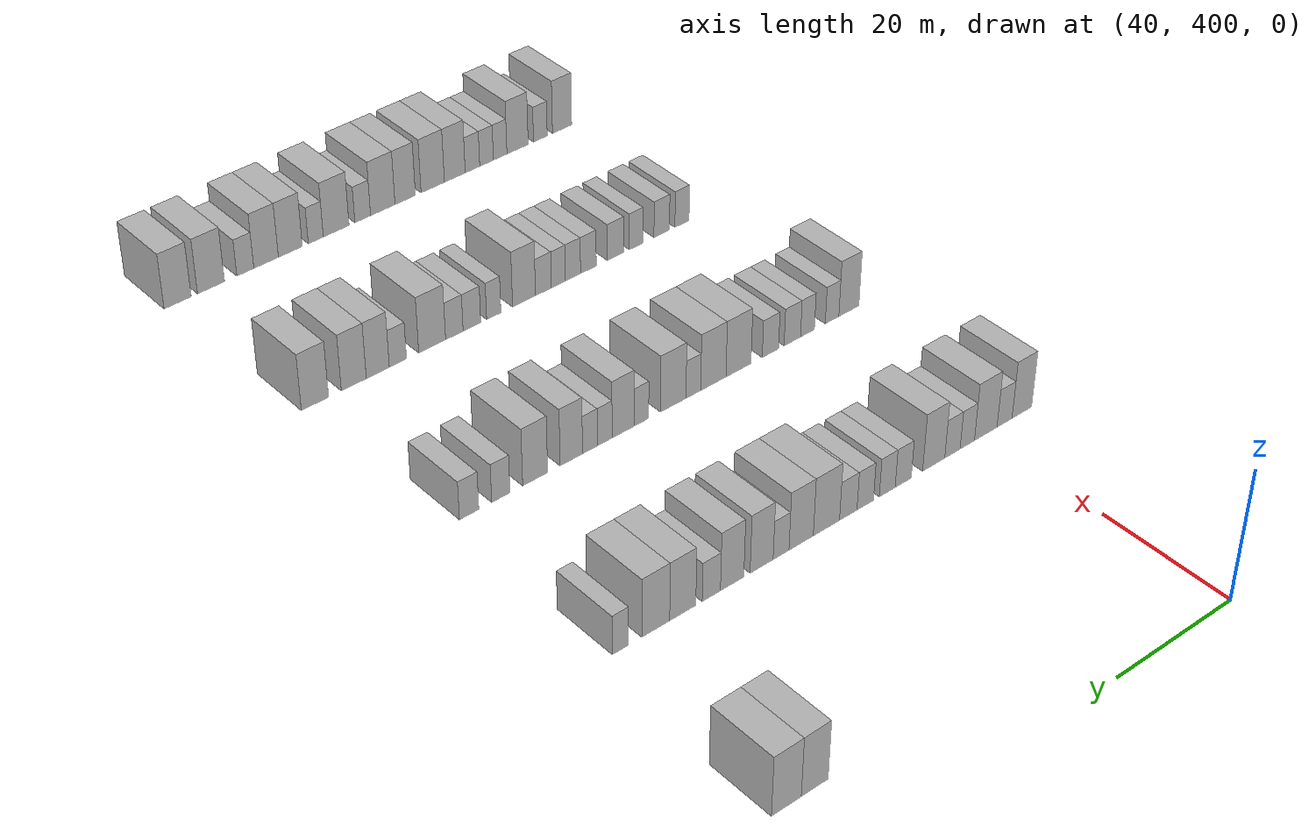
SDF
<sdf version="1.6">
 <world name="default">
  <model name="building_471">
   <static>1</static>
   <pose>55.0000 457.7107 0 0.000000 0.000000 0.000000</pose>
   <link name="link">
    <pose>0 0 4.50 0 0 0</pose>
    <collision name="collision"><geometry><box><size>10.0000 3.9927 9.0000</size></box></geometry></collision>
    <visual name="visual">
     <cast_shadows>0</cast_shadows>
     <geometry><box><size>10.0000 3.9927 9.0000</size></box></geometry>
     <material>
      <script>
       <uri>model://HANNAS_wall/materials/scripts</uri>
       <uri>model://HANNAS_wall/materials/textures</uri>
       <name>vrc/HANNAS_wall</name>
      </script>
     </material>
    </visual>
   </link>
  </model>
  <model name="building_472">
   <static>1</static>
   <pose>55.0000 461.8954 0 0.000000 0.000000 0.000000</pose>
   <link name="link">
    <pose>0 0 4.50 0 0 0</pose>
    <collision name="collision"><geometry><box><size>10.0000 4.3766 9.0000</size></box></geometry></collision>
    <visual name="visual">
     <cast_shadows>0</cast_shadows>
     <geometry><box><size>10.0000 4.3766 9.0000</size></box></geometry>
     <material>
      <script>
       <uri>model://HANNAS_wall/materials/scripts</uri>
       <uri>model://HANNAS_wall/materials/textures</uri>
       <name>vrc/HANNAS_wall</name>
      </script>
     </material>
    </visual>
   </link>
  </model>
  <model name="building_681">
   <static>1</static>
   <pose>85.0000 392.8755 0 0.000000 0.000000 0.000000</pose>
   <link name="link">
    <pose>0 0 4.50 0 0 0</pose>
    <collision name="collision"><geometry><box><size>10.0000 3.6332 9.0000</size></box></geometry></collision>
    <visual name="visual">
     <cast_shadows>0</cast_shadows>
     <geometry><box><size>10.0000 3.6332 9.0000</size></box></geometry>
     <material>
      <script>
       <uri>model://HANNAS_wall/materials/scripts</uri>
       <uri>model://HANNAS_wall/materials/textures</uri>
       <name>vrc/HANNAS_wall</name>
      </script>
     </material>
    </visual>
   </link>
  </model>
  <model name="building_682">
   <static>1</static>
   <pose>85.0000 396.0728 0 0.000000 0.000000 0.000000</pose>
   <link name="link">
    <pose>0 0 3.00 0 0 0</pose>
    <collision name="collision"><geometry><box><size>10.0000 2.7614 6.0000</size></box></geometry></collision>
    <visual name="visual">
     <cast_shadows>0</cast_shadows>
     <geometry><box><size>10.0000 2.7614 6.0000</size></box></geometry>
     <material>
      <script>
       <uri>model://HANNAS_wall/materials/scripts</uri>
       <uri>model://HANNAS_wall/materials/textures</uri>
       <name>vrc/HANNAS_wall</name>
      </script>
     </material>
    </visual>
   </link>
  </model>
  <model name="building_683">
   <static>1</static>
   <pose>85.0000 399.5117 0 0.000000 0.000000 0.000000</pose>
   <link name="link">
    <pose>0 0 4.50 0 0 0</pose>
    <collision name="collision"><geometry><box><size>10.0000 4.1166 9.0000</size></box></geometry></collision>
    <visual name="visual">
     <cast_shadows>0</cast_shadows>
     <geometry><box><size>10.0000 4.1166 9.0000</size></box></geometry>
     <material>
      <script>
       <uri>model://HANNAS_wall/materials/scripts</uri>
       <uri>model://HANNAS_wall/materials/textures</uri>
       <name>vrc/HANNAS_wall</name>
      </script>
     </material>
    </visual>
   </link>
  </model>
  <model name="building_684">
   <static>1</static>
   <pose>85.0000 402.8672 0 0.000000 0.000000 0.000000</pose>
   <link name="link">
    <pose>0 0 3.00 0 0 0</pose>
    <collision name="collision"><geometry><box><size>10.0000 2.5944 6.0000</size></box></geometry></collision>
    <visual name="visual">
     <cast_shadows>0</cast_shadows>
     <geometry><box><size>10.0000 2.5944 6.0000</size></box></geometry>
     <material>
      <script>
       <uri>model://HANNAS_wall/materials/scripts</uri>
       <uri>model://HANNAS_wall/materials/textures</uri>
       <name>vrc/HANNAS_wall</name>
      </script>
     </material>
    </visual>
   </link>
  </model>
  <model name="building_685">
   <static>1</static>
   <pose>85.0000 405.5338 0 0.000000 0.000000 0.000000</pose>
   <link name="link">
    <pose>0 0 3.00 0 0 0</pose>
    <collision name="collision"><geometry><box><size>10.0000 2.7387 6.0000</size></box></geometry></collision>
    <visual name="visual">
     <cast_shadows>0</cast_shadows>
     <geometry><box><size>10.0000 2.7387 6.0000</size></box></geometry>
     <material>
      <script>
       <uri>model://HANNAS_wall/materials/scripts</uri>
       <uri>model://HANNAS_wall/materials/textures</uri>
       <name>vrc/HANNAS_wall</name>
      </script>
     </material>
    </visual>
   </link>
  </model>
  <model name="building_686">
   <static>1</static>
   <pose>85.0000 408.8650 0 0.000000 0.000000 0.000000</pose>
   <link name="link">
    <pose>0 0 4.50 0 0 0</pose>
    <collision name="collision"><geometry><box><size>10.0000 3.9237 9.0000</size></box></geometry></collision>
    <visual name="visual">
     <cast_shadows>0</cast_shadows>
     <geometry><box><size>10.0000 3.9237 9.0000</size></box></geometry>
     <material>
      <script>
       <uri>model://HANNAS_wall/materials/scripts</uri>
       <uri>model://HANNAS_wall/materials/textures</uri>
       <name>vrc/HANNAS_wall</name>
      </script>
     </material>
    </visual>
   </link>
  </model>
  <model name="building_687">
   <static>1</static>
   <pose>85.0000 414.2252 0 0.000000 0.000000 0.000000</pose>
   <link name="link">
    <pose>0 0 3.00 0 0 0</pose>
    <collision name="collision"><geometry><box><size>10.0000 2.7968 6.0000</size></box></geometry></collision>
    <visual name="visual">
     <cast_shadows>0</cast_shadows>
     <geometry><box><size>10.0000 2.7968 6.0000</size></box></geometry>
     <material>
      <script>
       <uri>model://HANNAS_wall/materials/scripts</uri>
       <uri>model://HANNAS_wall/materials/textures</uri>
       <name>vrc/HANNAS_wall</name>
      </script>
     </material>
    </visual>
   </link>
  </model>
  <model name="building_688">
   <static>1</static>
   <pose>85.0000 416.9975 0 0.000000 0.000000 0.000000</pose>
   <link name="link">
    <pose>0 0 3.00 0 0 0</pose>
    <collision name="collision"><geometry><box><size>10.0000 2.7479 6.0000</size></box></geometry></collision>
    <visual name="visual">
     <cast_shadows>0</cast_shadows>
     <geometry><box><size>10.0000 2.7479 6.0000</size></box></geometry>
     <material>
      <script>
       <uri>model://HANNAS_wall/materials/scripts</uri>
       <uri>model://HANNAS_wall/materials/textures</uri>
       <name>vrc/HANNAS_wall</name>
      </script>
     </material>
    </visual>
   </link>
  </model>
  <model name="building_689">
   <static>1</static>
   <pose>85.0000 420.7745 0 0.000000 0.000000 0.000000</pose>
   <link name="link">
    <pose>0 0 3.00 0 0 0</pose>
    <collision name="collision"><geometry><box><size>10.0000 2.8060 6.0000</size></box></geometry></collision>
    <visual name="visual">
     <cast_shadows>0</cast_shadows>
     <geometry><box><size>10.0000 2.8060 6.0000</size></box></geometry>
     <material>
      <script>
       <uri>model://HANNAS_wall/materials/scripts</uri>
       <uri>model://HANNAS_wall/materials/textures</uri>
       <name>vrc/HANNAS_wall</name>
      </script>
     </material>
    </visual>
   </link>
  </model>
  <model name="building_690">
   <static>1</static>
   <pose>85.0000 423.6525 0 0.000000 0.000000 0.000000</pose>
   <link name="link">
    <pose>0 0 3.00 0 0 0</pose>
    <collision name="collision"><geometry><box><size>10.0000 2.9501 6.0000</size></box></geometry></collision>
    <visual name="visual">
     <cast_shadows>0</cast_shadows>
     <geometry><box><size>10.0000 2.9501 6.0000</size></box></geometry>
     <material>
      <script>
       <uri>model://HANNAS_wall/materials/scripts</uri>
       <uri>model://HANNAS_wall/materials/textures</uri>
       <name>vrc/HANNAS_wall</name>
      </script>
     </material>
    </visual>
   </link>
  </model>
  <model name="building_691">
   <static>1</static>
   <pose>85.0000 427.3217 0 0.000000 0.000000 0.000000</pose>
   <link name="link">
    <pose>0 0 4.50 0 0 0</pose>
    <collision name="collision"><geometry><box><size>10.0000 4.3881 9.0000</size></box></geometry></collision>
    <visual name="visual">
     <cast_shadows>0</cast_shadows>
     <geometry><box><size>10.0000 4.3881 9.0000</size></box></geometry>
     <material>
      <script>
       <uri>model://HANNAS_wall/materials/scripts</uri>
       <uri>model://HANNAS_wall/materials/textures</uri>
       <name>vrc/HANNAS_wall</name>
      </script>
     </material>
    </visual>
   </link>
  </model>
  <model name="building_692">
   <static>1</static>
   <pose>85.0000 431.5186 0 0.000000 0.000000 0.000000</pose>
   <link name="link">
    <pose>0 0 4.50 0 0 0</pose>
    <collision name="collision"><geometry><box><size>10.0000 4.0057 9.0000</size></box></geometry></collision>
    <visual name="visual">
     <cast_shadows>0</cast_shadows>
     <geometry><box><size>10.0000 4.0057 9.0000</size></box></geometry>
     <material>
      <script>
       <uri>model://HANNAS_wall/materials/scripts</uri>
       <uri>model://HANNAS_wall/materials/textures</uri>
       <name>vrc/HANNAS_wall</name>
      </script>
     </material>
    </visual>
   </link>
  </model>
  <model name="building_693">
   <static>1</static>
   <pose>85.0000 434.8150 0 0.000000 0.000000 0.000000</pose>
   <link name="link">
    <pose>0 0 3.00 0 0 0</pose>
    <collision name="collision"><geometry><box><size>10.0000 2.5872 6.0000</size></box></geometry></collision>
    <visual name="visual">
     <cast_shadows>0</cast_shadows>
     <geometry><box><size>10.0000 2.5872 6.0000</size></box></geometry>
     <material>
      <script>
       <uri>model://HANNAS_wall/materials/scripts</uri>
       <uri>model://HANNAS_wall/materials/textures</uri>
       <name>vrc/HANNAS_wall</name>
      </script>
     </material>
    </visual>
   </link>
  </model>
  <model name="building_694">
   <static>1</static>
   <pose>85.0000 437.9677 0 0.000000 0.000000 0.000000</pose>
   <link name="link">
    <pose>0 0 4.50 0 0 0</pose>
    <collision name="collision"><geometry><box><size>10.0000 3.7180 9.0000</size></box></geometry></collision>
    <visual name="visual">
     <cast_shadows>0</cast_shadows>
     <geometry><box><size>10.0000 3.7180 9.0000</size></box></geometry>
     <material>
      <script>
       <uri>model://HANNAS_wall/materials/scripts</uri>
       <uri>model://HANNAS_wall/materials/textures</uri>
       <name>vrc/HANNAS_wall</name>
      </script>
     </material>
    </visual>
   </link>
  </model>
  <model name="building_695">
   <static>1</static>
   <pose>85.0000 442.6851 0 0.000000 0.000000 0.000000</pose>
   <link name="link">
    <pose>0 0 4.50 0 0 0</pose>
    <collision name="collision"><geometry><box><size>10.0000 3.7169 9.0000</size></box></geometry></collision>
    <visual name="visual">
     <cast_shadows>0</cast_shadows>
     <geometry><box><size>10.0000 3.7169 9.0000</size></box></geometry>
     <material>
      <script>
       <uri>model://HANNAS_wall/materials/scripts</uri>
       <uri>model://HANNAS_wall/materials/textures</uri>
       <name>vrc/HANNAS_wall</name>
      </script>
     </material>
    </visual>
   </link>
  </model>
  <model name="building_696">
   <static>1</static>
   <pose>85.0000 445.9765 0 0.000000 0.000000 0.000000</pose>
   <link name="link">
    <pose>0 0 3.00 0 0 0</pose>
    <collision name="collision"><geometry><box><size>10.0000 2.8658 6.0000</size></box></geometry></collision>
    <visual name="visual">
     <cast_shadows>0</cast_shadows>
     <geometry><box><size>10.0000 2.8658 6.0000</size></box></geometry>
     <material>
      <script>
       <uri>model://HANNAS_wall/materials/scripts</uri>
       <uri>model://HANNAS_wall/materials/textures</uri>
       <name>vrc/HANNAS_wall</name>
      </script>
     </material>
    </visual>
   </link>
  </model>
  <model name="building_697">
   <static>1</static>
   <pose>85.0000 450.4299 0 0.000000 0.000000 0.000000</pose>
   <link name="link">
    <pose>0 0 4.50 0 0 0</pose>
    <collision name="collision"><geometry><box><size>10.0000 4.0410 9.0000</size></box></geometry></collision>
    <visual name="visual">
     <cast_shadows>0</cast_shadows>
     <geometry><box><size>10.0000 4.0410 9.0000</size></box></geometry>
     <material>
      <script>
       <uri>model://HANNAS_wall/materials/scripts</uri>
       <uri>model://HANNAS_wall/materials/textures</uri>
       <name>vrc/HANNAS_wall</name>
      </script>
     </material>
    </visual>
   </link>
  </model>
  <model name="building_698">
   <static>1</static>
   <pose>85.0000 454.5798 0 0.000000 0.000000 0.000000</pose>
   <link name="link">
    <pose>0 0 4.50 0 0 0</pose>
    <collision name="collision"><geometry><box><size>10.0000 4.2588 9.0000</size></box></geometry></collision>
    <visual name="visual">
     <cast_shadows>0</cast_shadows>
     <geometry><box><size>10.0000 4.2588 9.0000</size></box></geometry>
     <material>
      <script>
       <uri>model://HANNAS_wall/materials/scripts</uri>
       <uri>model://HANNAS_wall/materials/textures</uri>
       <name>vrc/HANNAS_wall</name>
      </script>
     </material>
    </visual>
   </link>
  </model>
  <model name="building_699">
   <static>1</static>
   <pose>85.0000 459.9304 0 0.000000 0.000000 0.000000</pose>
   <link name="link">
    <pose>0 0 3.00 0 0 0</pose>
    <collision name="collision"><geometry><box><size>10.0000 2.4423 6.0000</size></box></geometry></collision>
    <visual name="visual">
     <cast_shadows>0</cast_shadows>
     <geometry><box><size>10.0000 2.4423 6.0000</size></box></geometry>
     <material>
      <script>
       <uri>model://HANNAS_wall/materials/scripts</uri>
       <uri>model://HANNAS_wall/materials/textures</uri>
       <name>vrc/HANNAS_wall</name>
      </script>
     </material>
    </visual>
   </link>
  </model>
  <model name="building_894">
   <static>1</static>
   <pose>115.0000 394.5313 0 0.000000 0.000000 0.000000</pose>
   <link name="link">
    <pose>0 0 4.50 0 0 0</pose>
    <collision name="collision"><geometry><box><size>10.0000 3.7235 9.0000</size></box></geometry></collision>
    <visual name="visual">
     <cast_shadows>0</cast_shadows>
     <geometry><box><size>10.0000 3.7235 9.0000</size></box></geometry>
     <material>
      <script>
       <uri>model://HANNAS_wall/materials/scripts</uri>
       <uri>model://HANNAS_wall/materials/textures</uri>
       <name>vrc/HANNAS_wall</name>
      </script>
     </material>
    </visual>
   </link>
  </model>
  <model name="building_895">
   <static>1</static>
   <pose>115.0000 397.6484 0 0.000000 0.000000 0.000000</pose>
   <link name="link">
    <pose>0 0 3.00 0 0 0</pose>
    <collision name="collision"><geometry><box><size>10.0000 2.5107 6.0000</size></box></geometry></collision>
    <visual name="visual">
     <cast_shadows>0</cast_shadows>
     <geometry><box><size>10.0000 2.5107 6.0000</size></box></geometry>
     <material>
      <script>
       <uri>model://HANNAS_wall/materials/scripts</uri>
       <uri>model://HANNAS_wall/materials/textures</uri>
       <name>vrc/HANNAS_wall</name>
      </script>
     </material>
    </visual>
   </link>
  </model>
  <model name="building_896">
   <static>1</static>
   <pose>115.0000 402.1711 0 0.000000 0.000000 0.000000</pose>
   <link name="link">
    <pose>0 0 3.00 0 0 0</pose>
    <collision name="collision"><geometry><box><size>10.0000 2.5346 6.0000</size></box></geometry></collision>
    <visual name="visual">
     <cast_shadows>0</cast_shadows>
     <geometry><box><size>10.0000 2.5346 6.0000</size></box></geometry>
     <material>
      <script>
       <uri>model://HANNAS_wall/materials/scripts</uri>
       <uri>model://HANNAS_wall/materials/textures</uri>
       <name>vrc/HANNAS_wall</name>
      </script>
     </material>
    </visual>
   </link>
  </model>
  <model name="building_897">
   <static>1</static>
   <pose>115.0000 404.9210 0 0.000000 0.000000 0.000000</pose>
   <link name="link">
    <pose>0 0 3.00 0 0 0</pose>
    <collision name="collision"><geometry><box><size>10.0000 2.9652 6.0000</size></box></geometry></collision>
    <visual name="visual">
     <cast_shadows>0</cast_shadows>
     <geometry><box><size>10.0000 2.9652 6.0000</size></box></geometry>
     <material>
      <script>
       <uri>model://HANNAS_wall/materials/scripts</uri>
       <uri>model://HANNAS_wall/materials/textures</uri>
       <name>vrc/HANNAS_wall</name>
      </script>
     </material>
    </visual>
   </link>
  </model>
  <model name="building_898">
   <static>1</static>
   <pose>115.0000 408.8579 0 0.000000 0.000000 0.000000</pose>
   <link name="link">
    <pose>0 0 3.00 0 0 0</pose>
    <collision name="collision"><geometry><box><size>10.0000 2.9086 6.0000</size></box></geometry></collision>
    <visual name="visual">
     <cast_shadows>0</cast_shadows>
     <geometry><box><size>10.0000 2.9086 6.0000</size></box></geometry>
     <material>
      <script>
       <uri>model://HANNAS_wall/materials/scripts</uri>
       <uri>model://HANNAS_wall/materials/textures</uri>
       <name>vrc/HANNAS_wall</name>
      </script>
     </material>
    </visual>
   </link>
  </model>
  <model name="building_899">
   <static>1</static>
   <pose>115.0000 414.5144 0 0.000000 0.000000 0.000000</pose>
   <link name="link">
    <pose>0 0 4.50 0 0 0</pose>
    <collision name="collision"><geometry><box><size>10.0000 4.4045 9.0000</size></box></geometry></collision>
    <visual name="visual">
     <cast_shadows>0</cast_shadows>
     <geometry><box><size>10.0000 4.4045 9.0000</size></box></geometry>
     <material>
      <script>
       <uri>model://HANNAS_wall/materials/scripts</uri>
       <uri>model://HANNAS_wall/materials/textures</uri>
       <name>vrc/HANNAS_wall</name>
      </script>
     </material>
    </visual>
   </link>
  </model>
  <model name="building_900">
   <static>1</static>
   <pose>115.0000 418.9099 0 0.000000 0.000000 0.000000</pose>
   <link name="link">
    <pose>0 0 4.50 0 0 0</pose>
    <collision name="collision"><geometry><box><size>10.0000 4.3864 9.0000</size></box></geometry></collision>
    <visual name="visual">
     <cast_shadows>0</cast_shadows>
     <geometry><box><size>10.0000 4.3864 9.0000</size></box></geometry>
     <material>
      <script>
       <uri>model://HANNAS_wall/materials/scripts</uri>
       <uri>model://HANNAS_wall/materials/textures</uri>
       <name>vrc/HANNAS_wall</name>
      </script>
     </material>
    </visual>
   </link>
  </model>
  <model name="building_901">
   <static>1</static>
   <pose>115.0000 422.3637 0 0.000000 0.000000 0.000000</pose>
   <link name="link">
    <pose>0 0 3.00 0 0 0</pose>
    <collision name="collision"><geometry><box><size>10.0000 2.5212 6.0000</size></box></geometry></collision>
    <visual name="visual">
     <cast_shadows>0</cast_shadows>
     <geometry><box><size>10.0000 2.5212 6.0000</size></box></geometry>
     <material>
      <script>
       <uri>model://HANNAS_wall/materials/scripts</uri>
       <uri>model://HANNAS_wall/materials/textures</uri>
       <name>vrc/HANNAS_wall</name>
      </script>
     </material>
    </visual>
   </link>
  </model>
  <model name="building_902">
   <static>1</static>
   <pose>115.0000 425.7836 0 0.000000 0.000000 0.000000</pose>
   <link name="link">
    <pose>0 0 4.50 0 0 0</pose>
    <collision name="collision"><geometry><box><size>10.0000 4.3186 9.0000</size></box></geometry></collision>
    <visual name="visual">
     <cast_shadows>0</cast_shadows>
     <geometry><box><size>10.0000 4.3186 9.0000</size></box></geometry>
     <material>
      <script>
       <uri>model://HANNAS_wall/materials/scripts</uri>
       <uri>model://HANNAS_wall/materials/textures</uri>
       <name>vrc/HANNAS_wall</name>
      </script>
     </material>
    </visual>
   </link>
  </model>
  <model name="building_903">
   <static>1</static>
   <pose>115.0000 431.1488 0 0.000000 0.000000 0.000000</pose>
   <link name="link">
    <pose>0 0 3.00 0 0 0</pose>
    <collision name="collision"><geometry><box><size>10.0000 2.4117 6.0000</size></box></geometry></collision>
    <visual name="visual">
     <cast_shadows>0</cast_shadows>
     <geometry><box><size>10.0000 2.4117 6.0000</size></box></geometry>
     <material>
      <script>
       <uri>model://HANNAS_wall/materials/scripts</uri>
       <uri>model://HANNAS_wall/materials/textures</uri>
       <name>vrc/HANNAS_wall</name>
      </script>
     </material>
    </visual>
   </link>
  </model>
  <model name="building_904">
   <static>1</static>
   <pose>115.0000 434.1847 0 0.000000 0.000000 0.000000</pose>
   <link name="link">
    <pose>0 0 4.50 0 0 0</pose>
    <collision name="collision"><geometry><box><size>10.0000 3.6602 9.0000</size></box></geometry></collision>
    <visual name="visual">
     <cast_shadows>0</cast_shadows>
     <geometry><box><size>10.0000 3.6602 9.0000</size></box></geometry>
     <material>
      <script>
       <uri>model://HANNAS_wall/materials/scripts</uri>
       <uri>model://HANNAS_wall/materials/textures</uri>
       <name>vrc/HANNAS_wall</name>
      </script>
     </material>
    </visual>
   </link>
  </model>
  <model name="building_905">
   <static>1</static>
   <pose>115.0000 437.2220 0 0.000000 0.000000 0.000000</pose>
   <link name="link">
    <pose>0 0 3.00 0 0 0</pose>
    <collision name="collision"><geometry><box><size>10.0000 2.4143 6.0000</size></box></geometry></collision>
    <visual name="visual">
     <cast_shadows>0</cast_shadows>
     <geometry><box><size>10.0000 2.4143 6.0000</size></box></geometry>
     <material>
      <script>
       <uri>model://HANNAS_wall/materials/scripts</uri>
       <uri>model://HANNAS_wall/materials/textures</uri>
       <name>vrc/HANNAS_wall</name>
      </script>
     </material>
    </visual>
   </link>
  </model>
  <model name="building_906">
   <static>1</static>
   <pose>115.0000 439.6427 0 0.000000 0.000000 0.000000</pose>
   <link name="link">
    <pose>0 0 3.00 0 0 0</pose>
    <collision name="collision"><geometry><box><size>10.0000 2.4271 6.0000</size></box></geometry></collision>
    <visual name="visual">
     <cast_shadows>0</cast_shadows>
     <geometry><box><size>10.0000 2.4271 6.0000</size></box></geometry>
     <material>
      <script>
       <uri>model://HANNAS_wall/materials/scripts</uri>
       <uri>model://HANNAS_wall/materials/textures</uri>
       <name>vrc/HANNAS_wall</name>
      </script>
     </material>
    </visual>
   </link>
  </model>
  <model name="building_907">
   <static>1</static>
   <pose>115.0000 442.6619 0 0.000000 0.000000 0.000000</pose>
   <link name="link">
    <pose>0 0 4.50 0 0 0</pose>
    <collision name="collision"><geometry><box><size>10.0000 3.6113 9.0000</size></box></geometry></collision>
    <visual name="visual">
     <cast_shadows>0</cast_shadows>
     <geometry><box><size>10.0000 3.6113 9.0000</size></box></geometry>
     <material>
      <script>
       <uri>model://HANNAS_wall/materials/scripts</uri>
       <uri>model://HANNAS_wall/materials/textures</uri>
       <name>vrc/HANNAS_wall</name>
      </script>
     </material>
    </visual>
   </link>
  </model>
  <model name="building_908">
   <static>1</static>
   <pose>115.0000 448.4432 0 0.000000 0.000000 0.000000</pose>
   <link name="link">
    <pose>0 0 4.50 0 0 0</pose>
    <collision name="collision"><geometry><box><size>10.0000 3.9513 9.0000</size></box></geometry></collision>
    <visual name="visual">
     <cast_shadows>0</cast_shadows>
     <geometry><box><size>10.0000 3.9513 9.0000</size></box></geometry>
     <material>
      <script>
       <uri>model://HANNAS_wall/materials/scripts</uri>
       <uri>model://HANNAS_wall/materials/textures</uri>
       <name>vrc/HANNAS_wall</name>
      </script>
     </material>
    </visual>
   </link>
  </model>
  <model name="building_909">
   <static>1</static>
   <pose>115.0000 453.8413 0 0.000000 0.000000 0.000000</pose>
   <link name="link">
    <pose>0 0 3.00 0 0 0</pose>
    <collision name="collision"><geometry><box><size>10.0000 2.8448 6.0000</size></box></geometry></collision>
    <visual name="visual">
     <cast_shadows>0</cast_shadows>
     <geometry><box><size>10.0000 2.8448 6.0000</size></box></geometry>
     <material>
      <script>
       <uri>model://HANNAS_wall/materials/scripts</uri>
       <uri>model://HANNAS_wall/materials/textures</uri>
       <name>vrc/HANNAS_wall</name>
      </script>
     </material>
    </visual>
   </link>
  </model>
  <model name="building_910">
   <static>1</static>
   <pose>115.0000 458.7483 0 0.000000 0.000000 0.000000</pose>
   <link name="link">
    <pose>0 0 3.00 0 0 0</pose>
    <collision name="collision"><geometry><box><size>10.0000 2.9692 6.0000</size></box></geometry></collision>
    <visual name="visual">
     <cast_shadows>0</cast_shadows>
     <geometry><box><size>10.0000 2.9692 6.0000</size></box></geometry>
     <material>
      <script>
       <uri>model://HANNAS_wall/materials/scripts</uri>
       <uri>model://HANNAS_wall/materials/textures</uri>
       <name>vrc/HANNAS_wall</name>
      </script>
     </material>
    </visual>
   </link>
  </model>
  <model name="building_1128">
   <static>1</static>
   <pose>145.0000 398.0613 0 0.000000 0.000000 0.000000</pose>
   <link name="link">
    <pose>0 0 3.00 0 0 0</pose>
    <collision name="collision"><geometry><box><size>10.0000 2.6232 6.0000</size></box></geometry></collision>
    <visual name="visual">
     <cast_shadows>0</cast_shadows>
     <geometry><box><size>10.0000 2.6232 6.0000</size></box></geometry>
     <material>
      <script>
       <uri>model://HANNAS_wall/materials/scripts</uri>
       <uri>model://HANNAS_wall/materials/textures</uri>
       <name>vrc/HANNAS_wall</name>
      </script>
     </material>
    </visual>
   </link>
  </model>
  <model name="building_1129">
   <static>1</static>
   <pose>145.0000 401.8117 0 0.000000 0.000000 0.000000</pose>
   <link name="link">
    <pose>0 0 3.00 0 0 0</pose>
    <collision name="collision"><geometry><box><size>10.0000 2.8776 6.0000</size></box></geometry></collision>
    <visual name="visual">
     <cast_shadows>0</cast_shadows>
     <geometry><box><size>10.0000 2.8776 6.0000</size></box></geometry>
     <material>
      <script>
       <uri>model://HANNAS_wall/materials/scripts</uri>
       <uri>model://HANNAS_wall/materials/textures</uri>
       <name>vrc/HANNAS_wall</name>
      </script>
     </material>
    </visual>
   </link>
  </model>
  <model name="building_1130">
   <static>1</static>
   <pose>145.0000 406.4985 0 0.000000 0.000000 0.000000</pose>
   <link name="link">
    <pose>0 0 3.00 0 0 0</pose>
    <collision name="collision"><geometry><box><size>10.0000 2.4959 6.0000</size></box></geometry></collision>
    <visual name="visual">
     <cast_shadows>0</cast_shadows>
     <geometry><box><size>10.0000 2.4959 6.0000</size></box></geometry>
     <material>
      <script>
       <uri>model://HANNAS_wall/materials/scripts</uri>
       <uri>model://HANNAS_wall/materials/textures</uri>
       <name>vrc/HANNAS_wall</name>
      </script>
     </material>
    </visual>
   </link>
  </model>
  <model name="building_1131">
   <static>1</static>
   <pose>145.0000 410.2291 0 0.000000 0.000000 0.000000</pose>
   <link name="link">
    <pose>0 0 3.00 0 0 0</pose>
    <collision name="collision"><geometry><box><size>10.0000 2.9652 6.0000</size></box></geometry></collision>
    <visual name="visual">
     <cast_shadows>0</cast_shadows>
     <geometry><box><size>10.0000 2.9652 6.0000</size></box></geometry>
     <material>
      <script>
       <uri>model://HANNAS_wall/materials/scripts</uri>
       <uri>model://HANNAS_wall/materials/textures</uri>
       <name>vrc/HANNAS_wall</name>
      </script>
     </material>
    </visual>
   </link>
  </model>
  <model name="building_1132">
   <static>1</static>
   <pose>145.0000 415.1075 0 0.000000 0.000000 0.000000</pose>
   <link name="link">
    <pose>0 0 3.00 0 0 0</pose>
    <collision name="collision"><geometry><box><size>10.0000 2.7917 6.0000</size></box></geometry></collision>
    <visual name="visual">
     <cast_shadows>0</cast_shadows>
     <geometry><box><size>10.0000 2.7917 6.0000</size></box></geometry>
     <material>
      <script>
       <uri>model://HANNAS_wall/materials/scripts</uri>
       <uri>model://HANNAS_wall/materials/textures</uri>
       <name>vrc/HANNAS_wall</name>
      </script>
     </material>
    </visual>
   </link>
  </model>
  <model name="building_1133">
   <static>1</static>
   <pose>145.0000 417.8361 0 0.000000 0.000000 0.000000</pose>
   <link name="link">
    <pose>0 0 3.00 0 0 0</pose>
    <collision name="collision"><geometry><box><size>10.0000 2.6656 6.0000</size></box></geometry></collision>
    <visual name="visual">
     <cast_shadows>0</cast_shadows>
     <geometry><box><size>10.0000 2.6656 6.0000</size></box></geometry>
     <material>
      <script>
       <uri>model://HANNAS_wall/materials/scripts</uri>
       <uri>model://HANNAS_wall/materials/textures</uri>
       <name>vrc/HANNAS_wall</name>
      </script>
     </material>
    </visual>
   </link>
  </model>
  <model name="building_1134">
   <static>1</static>
   <pose>145.0000 420.3986 0 0.000000 0.000000 0.000000</pose>
   <link name="link">
    <pose>0 0 3.00 0 0 0</pose>
    <collision name="collision"><geometry><box><size>10.0000 2.4594 6.0000</size></box></geometry></collision>
    <visual name="visual">
     <cast_shadows>0</cast_shadows>
     <geometry><box><size>10.0000 2.4594 6.0000</size></box></geometry>
     <material>
      <script>
       <uri>model://HANNAS_wall/materials/scripts</uri>
       <uri>model://HANNAS_wall/materials/textures</uri>
       <name>vrc/HANNAS_wall</name>
      </script>
     </material>
    </visual>
   </link>
  </model>
  <model name="building_1135">
   <static>1</static>
   <pose>145.0000 423.0126 0 0.000000 0.000000 0.000000</pose>
   <link name="link">
    <pose>0 0 3.00 0 0 0</pose>
    <collision name="collision"><geometry><box><size>10.0000 2.7687 6.0000</size></box></geometry></collision>
    <visual name="visual">
     <cast_shadows>0</cast_shadows>
     <geometry><box><size>10.0000 2.7687 6.0000</size></box></geometry>
     <material>
      <script>
       <uri>model://HANNAS_wall/materials/scripts</uri>
       <uri>model://HANNAS_wall/materials/textures</uri>
       <name>vrc/HANNAS_wall</name>
      </script>
     </material>
    </visual>
   </link>
  </model>
  <model name="building_1136">
   <static>1</static>
   <pose>145.0000 426.3698 0 0.000000 0.000000 0.000000</pose>
   <link name="link">
    <pose>0 0 4.50 0 0 0</pose>
    <collision name="collision"><geometry><box><size>10.0000 3.9457 9.0000</size></box></geometry></collision>
    <visual name="visual">
     <cast_shadows>0</cast_shadows>
     <geometry><box><size>10.0000 3.9457 9.0000</size></box></geometry>
     <material>
      <script>
       <uri>model://HANNAS_wall/materials/scripts</uri>
       <uri>model://HANNAS_wall/materials/textures</uri>
       <name>vrc/HANNAS_wall</name>
      </script>
     </material>
    </visual>
   </link>
  </model>
  <model name="building_1137">
   <static>1</static>
   <pose>145.0000 431.5495 0 0.000000 0.000000 0.000000</pose>
   <link name="link">
    <pose>0 0 3.00 0 0 0</pose>
    <collision name="collision"><geometry><box><size>10.0000 2.4138 6.0000</size></box></geometry></collision>
    <visual name="visual">
     <cast_shadows>0</cast_shadows>
     <geometry><box><size>10.0000 2.4138 6.0000</size></box></geometry>
     <material>
      <script>
       <uri>model://HANNAS_wall/materials/scripts</uri>
       <uri>model://HANNAS_wall/materials/textures</uri>
       <name>vrc/HANNAS_wall</name>
      </script>
     </material>
    </visual>
   </link>
  </model>
  <model name="building_1138">
   <static>1</static>
   <pose>145.0000 435.2357 0 0.000000 0.000000 0.000000</pose>
   <link name="link">
    <pose>0 0 3.00 0 0 0</pose>
    <collision name="collision"><geometry><box><size>10.0000 2.9584 6.0000</size></box></geometry></collision>
    <visual name="visual">
     <cast_shadows>0</cast_shadows>
     <geometry><box><size>10.0000 2.9584 6.0000</size></box></geometry>
     <material>
      <script>
       <uri>model://HANNAS_wall/materials/scripts</uri>
       <uri>model://HANNAS_wall/materials/textures</uri>
       <name>vrc/HANNAS_wall</name>
      </script>
     </material>
    </visual>
   </link>
  </model>
  <model name="building_1139">
   <static>1</static>
   <pose>145.0000 438.1715 0 0.000000 0.000000 0.000000</pose>
   <link name="link">
    <pose>0 0 3.00 0 0 0</pose>
    <collision name="collision"><geometry><box><size>10.0000 2.9132 6.0000</size></box></geometry></collision>
    <visual name="visual">
     <cast_shadows>0</cast_shadows>
     <geometry><box><size>10.0000 2.9132 6.0000</size></box></geometry>
     <material>
      <script>
       <uri>model://HANNAS_wall/materials/scripts</uri>
       <uri>model://HANNAS_wall/materials/textures</uri>
       <name>vrc/HANNAS_wall</name>
      </script>
     </material>
    </visual>
   </link>
  </model>
  <model name="building_1140">
   <static>1</static>
   <pose>145.0000 441.8434 0 0.000000 0.000000 0.000000</pose>
   <link name="link">
    <pose>0 0 4.50 0 0 0</pose>
    <collision name="collision"><geometry><box><size>10.0000 4.4306 9.0000</size></box></geometry></collision>
    <visual name="visual">
     <cast_shadows>0</cast_shadows>
     <geometry><box><size>10.0000 4.4306 9.0000</size></box></geometry>
     <material>
      <script>
       <uri>model://HANNAS_wall/materials/scripts</uri>
       <uri>model://HANNAS_wall/materials/textures</uri>
       <name>vrc/HANNAS_wall</name>
      </script>
     </material>
    </visual>
   </link>
  </model>
  <model name="building_1141">
   <static>1</static>
   <pose>145.0000 447.4468 0 0.000000 0.000000 0.000000</pose>
   <link name="link">
    <pose>0 0 3.00 0 0 0</pose>
    <collision name="collision"><geometry><box><size>10.0000 2.7763 6.0000</size></box></geometry></collision>
    <visual name="visual">
     <cast_shadows>0</cast_shadows>
     <geometry><box><size>10.0000 2.7763 6.0000</size></box></geometry>
     <material>
      <script>
       <uri>model://HANNAS_wall/materials/scripts</uri>
       <uri>model://HANNAS_wall/materials/textures</uri>
       <name>vrc/HANNAS_wall</name>
      </script>
     </material>
    </visual>
   </link>
  </model>
  <model name="building_1142">
   <static>1</static>
   <pose>145.0000 450.6814 0 0.000000 0.000000 0.000000</pose>
   <link name="link">
    <pose>0 0 4.50 0 0 0</pose>
    <collision name="collision"><geometry><box><size>10.0000 3.6928 9.0000</size></box></geometry></collision>
    <visual name="visual">
     <cast_shadows>0</cast_shadows>
     <geometry><box><size>10.0000 3.6928 9.0000</size></box></geometry>
     <material>
      <script>
       <uri>model://HANNAS_wall/materials/scripts</uri>
       <uri>model://HANNAS_wall/materials/textures</uri>
       <name>vrc/HANNAS_wall</name>
      </script>
     </material>
    </visual>
   </link>
  </model>
  <model name="building_1143">
   <static>1</static>
   <pose>145.0000 454.5085 0 0.000000 0.000000 0.000000</pose>
   <link name="link">
    <pose>0 0 4.50 0 0 0</pose>
    <collision name="collision"><geometry><box><size>10.0000 3.9614 9.0000</size></box></geometry></collision>
    <visual name="visual">
     <cast_shadows>0</cast_shadows>
     <geometry><box><size>10.0000 3.9614 9.0000</size></box></geometry>
     <material>
      <script>
       <uri>model://HANNAS_wall/materials/scripts</uri>
       <uri>model://HANNAS_wall/materials/textures</uri>
       <name>vrc/HANNAS_wall</name>
      </script>
     </material>
    </visual>
   </link>
  </model>
  <model name="building_1144">
   <static>1</static>
   <pose>145.0000 460.6148 0 0.000000 0.000000 0.000000</pose>
   <link name="link">
    <pose>0 0 4.50 0 0 0</pose>
    <collision name="collision"><geometry><box><size>10.0000 4.2513 9.0000</size></box></geometry></collision>
    <visual name="visual">
     <cast_shadows>0</cast_shadows>
     <geometry><box><size>10.0000 4.2513 9.0000</size></box></geometry>
     <material>
      <script>
       <uri>model://HANNAS_wall/materials/scripts</uri>
       <uri>model://HANNAS_wall/materials/textures</uri>
       <name>vrc/HANNAS_wall</name>
      </script>
     </material>
    </visual>
   </link>
  </model>
  <model name="building_1353">
   <static>1</static>
   <pose>175.0000 395.3615 0 0.000000 0.000000 0.000000</pose>
   <link name="link">
    <pose>0 0 4.50 0 0 0</pose>
    <collision name="collision"><geometry><box><size>10.0000 3.6451 9.0000</size></box></geometry></collision>
    <visual name="visual">
     <cast_shadows>0</cast_shadows>
     <geometry><box><size>10.0000 3.6451 9.0000</size></box></geometry>
     <material>
      <script>
       <uri>model://HANNAS_wall/materials/scripts</uri>
       <uri>model://HANNAS_wall/materials/textures</uri>
       <name>vrc/HANNAS_wall</name>
      </script>
     </material>
    </visual>
   </link>
  </model>
  <model name="building_1354">
   <static>1</static>
   <pose>175.0000 399.4761 0 0.000000 0.000000 0.000000</pose>
   <link name="link">
    <pose>0 0 3.00 0 0 0</pose>
    <collision name="collision"><geometry><box><size>10.0000 2.5841 6.0000</size></box></geometry></collision>
    <visual name="visual">
     <cast_shadows>0</cast_shadows>
     <geometry><box><size>10.0000 2.5841 6.0000</size></box></geometry>
     <material>
      <script>
       <uri>model://HANNAS_wall/materials/scripts</uri>
       <uri>model://HANNAS_wall/materials/textures</uri>
       <name>vrc/HANNAS_wall</name>
      </script>
     </material>
    </visual>
   </link>
  </model>
  <model name="building_1355">
   <static>1</static>
   <pose>175.0000 403.7473 0 0.000000 0.000000 0.000000</pose>
   <link name="link">
    <pose>0 0 4.50 0 0 0</pose>
    <collision name="collision"><geometry><box><size>10.0000 3.9585 9.0000</size></box></geometry></collision>
    <visual name="visual">
     <cast_shadows>0</cast_shadows>
     <geometry><box><size>10.0000 3.9585 9.0000</size></box></geometry>
     <material>
      <script>
       <uri>model://HANNAS_wall/materials/scripts</uri>
       <uri>model://HANNAS_wall/materials/textures</uri>
       <name>vrc/HANNAS_wall</name>
      </script>
     </material>
    </visual>
   </link>
  </model>
  <model name="building_1356">
   <static>1</static>
   <pose>175.0000 406.9758 0 0.000000 0.000000 0.000000</pose>
   <link name="link">
    <pose>0 0 3.00 0 0 0</pose>
    <collision name="collision"><geometry><box><size>10.0000 2.4984 6.0000</size></box></geometry></collision>
    <visual name="visual">
     <cast_shadows>0</cast_shadows>
     <geometry><box><size>10.0000 2.4984 6.0000</size></box></geometry>
     <material>
      <script>
       <uri>model://HANNAS_wall/materials/scripts</uri>
       <uri>model://HANNAS_wall/materials/textures</uri>
       <name>vrc/HANNAS_wall</name>
      </script>
     </material>
    </visual>
   </link>
  </model>
  <model name="building_1357">
   <static>1</static>
   <pose>175.0000 409.4815 0 0.000000 0.000000 0.000000</pose>
   <link name="link">
    <pose>0 0 3.00 0 0 0</pose>
    <collision name="collision"><geometry><box><size>10.0000 2.5130 6.0000</size></box></geometry></collision>
    <visual name="visual">
     <cast_shadows>0</cast_shadows>
     <geometry><box><size>10.0000 2.5130 6.0000</size></box></geometry>
     <material>
      <script>
       <uri>model://HANNAS_wall/materials/scripts</uri>
       <uri>model://HANNAS_wall/materials/textures</uri>
       <name>vrc/HANNAS_wall</name>
      </script>
     </material>
    </visual>
   </link>
  </model>
  <model name="building_1358">
   <static>1</static>
   <pose>175.0000 412.0574 0 0.000000 0.000000 0.000000</pose>
   <link name="link">
    <pose>0 0 3.00 0 0 0</pose>
    <collision name="collision"><geometry><box><size>10.0000 2.6388 6.0000</size></box></geometry></collision>
    <visual name="visual">
     <cast_shadows>0</cast_shadows>
     <geometry><box><size>10.0000 2.6388 6.0000</size></box></geometry>
     <material>
      <script>
       <uri>model://HANNAS_wall/materials/scripts</uri>
       <uri>model://HANNAS_wall/materials/textures</uri>
       <name>vrc/HANNAS_wall</name>
      </script>
     </material>
    </visual>
   </link>
  </model>
  <model name="building_1359">
   <static>1</static>
   <pose>175.0000 415.2617 0 0.000000 0.000000 0.000000</pose>
   <link name="link">
    <pose>0 0 4.50 0 0 0</pose>
    <collision name="collision"><geometry><box><size>10.0000 3.7698 9.0000</size></box></geometry></collision>
    <visual name="visual">
     <cast_shadows>0</cast_shadows>
     <geometry><box><size>10.0000 3.7698 9.0000</size></box></geometry>
     <material>
      <script>
       <uri>model://HANNAS_wall/materials/scripts</uri>
       <uri>model://HANNAS_wall/materials/textures</uri>
       <name>vrc/HANNAS_wall</name>
      </script>
     </material>
    </visual>
   </link>
  </model>
  <model name="building_1360">
   <static>1</static>
   <pose>175.0000 419.2317 0 0.000000 0.000000 0.000000</pose>
   <link name="link">
    <pose>0 0 4.50 0 0 0</pose>
    <collision name="collision"><geometry><box><size>10.0000 4.1703 9.0000</size></box></geometry></collision>
    <visual name="visual">
     <cast_shadows>0</cast_shadows>
     <geometry><box><size>10.0000 4.1703 9.0000</size></box></geometry>
     <material>
      <script>
       <uri>model://HANNAS_wall/materials/scripts</uri>
       <uri>model://HANNAS_wall/materials/textures</uri>
       <name>vrc/HANNAS_wall</name>
      </script>
     </material>
    </visual>
   </link>
  </model>
  <model name="building_1361">
   <static>1</static>
   <pose>175.0000 424.1171 0 0.000000 0.000000 0.000000</pose>
   <link name="link">
    <pose>0 0 4.50 0 0 0</pose>
    <collision name="collision"><geometry><box><size>10.0000 3.6004 9.0000</size></box></geometry></collision>
    <visual name="visual">
     <cast_shadows>0</cast_shadows>
     <geometry><box><size>10.0000 3.6004 9.0000</size></box></geometry>
     <material>
      <script>
       <uri>model://HANNAS_wall/materials/scripts</uri>
       <uri>model://HANNAS_wall/materials/textures</uri>
       <name>vrc/HANNAS_wall</name>
      </script>
     </material>
    </visual>
   </link>
  </model>
  <model name="building_1362">
   <static>1</static>
   <pose>175.0000 428.0494 0 0.000000 0.000000 0.000000</pose>
   <link name="link">
    <pose>0 0 4.50 0 0 0</pose>
    <collision name="collision"><geometry><box><size>10.0000 4.2642 9.0000</size></box></geometry></collision>
    <visual name="visual">
     <cast_shadows>0</cast_shadows>
     <geometry><box><size>10.0000 4.2642 9.0000</size></box></geometry>
     <material>
      <script>
       <uri>model://HANNAS_wall/materials/scripts</uri>
       <uri>model://HANNAS_wall/materials/textures</uri>
       <name>vrc/HANNAS_wall</name>
      </script>
     </material>
    </visual>
   </link>
  </model>
  <model name="building_1363">
   <static>1</static>
   <pose>175.0000 431.5373 0 0.000000 0.000000 0.000000</pose>
   <link name="link">
    <pose>0 0 3.00 0 0 0</pose>
    <collision name="collision"><geometry><box><size>10.0000 2.7117 6.0000</size></box></geometry></collision>
    <visual name="visual">
     <cast_shadows>0</cast_shadows>
     <geometry><box><size>10.0000 2.7117 6.0000</size></box></geometry>
     <material>
      <script>
       <uri>model://HANNAS_wall/materials/scripts</uri>
       <uri>model://HANNAS_wall/materials/textures</uri>
       <name>vrc/HANNAS_wall</name>
      </script>
     </material>
    </visual>
   </link>
  </model>
  <model name="building_1364">
   <static>1</static>
   <pose>175.0000 436.0884 0 0.000000 0.000000 0.000000</pose>
   <link name="link">
    <pose>0 0 4.50 0 0 0</pose>
    <collision name="collision"><geometry><box><size>10.0000 4.3903 9.0000</size></box></geometry></collision>
    <visual name="visual">
     <cast_shadows>0</cast_shadows>
     <geometry><box><size>10.0000 4.3903 9.0000</size></box></geometry>
     <material>
      <script>
       <uri>model://HANNAS_wall/materials/scripts</uri>
       <uri>model://HANNAS_wall/materials/textures</uri>
       <name>vrc/HANNAS_wall</name>
      </script>
     </material>
    </visual>
   </link>
  </model>
  <model name="building_1365">
   <static>1</static>
   <pose>175.0000 439.5533 0 0.000000 0.000000 0.000000</pose>
   <link name="link">
    <pose>0 0 3.00 0 0 0</pose>
    <collision name="collision"><geometry><box><size>10.0000 2.5395 6.0000</size></box></geometry></collision>
    <visual name="visual">
     <cast_shadows>0</cast_shadows>
     <geometry><box><size>10.0000 2.5395 6.0000</size></box></geometry>
     <material>
      <script>
       <uri>model://HANNAS_wall/materials/scripts</uri>
       <uri>model://HANNAS_wall/materials/textures</uri>
       <name>vrc/HANNAS_wall</name>
      </script>
     </material>
    </visual>
   </link>
  </model>
  <model name="building_1366">
   <static>1</static>
   <pose>175.0000 443.8245 0 0.000000 0.000000 0.000000</pose>
   <link name="link">
    <pose>0 0 4.50 0 0 0</pose>
    <collision name="collision"><geometry><box><size>10.0000 4.0029 9.0000</size></box></geometry></collision>
    <visual name="visual">
     <cast_shadows>0</cast_shadows>
     <geometry><box><size>10.0000 4.0029 9.0000</size></box></geometry>
     <material>
      <script>
       <uri>model://HANNAS_wall/materials/scripts</uri>
       <uri>model://HANNAS_wall/materials/textures</uri>
       <name>vrc/HANNAS_wall</name>
      </script>
     </material>
    </visual>
   </link>
  </model>
  <model name="building_1367">
   <static>1</static>
   <pose>175.0000 447.8548 0 0.000000 0.000000 0.000000</pose>
   <link name="link">
    <pose>0 0 4.50 0 0 0</pose>
    <collision name="collision"><geometry><box><size>10.0000 4.0575 9.0000</size></box></geometry></collision>
    <visual name="visual">
     <cast_shadows>0</cast_shadows>
     <geometry><box><size>10.0000 4.0575 9.0000</size></box></geometry>
     <material>
      <script>
       <uri>model://HANNAS_wall/materials/scripts</uri>
       <uri>model://HANNAS_wall/materials/textures</uri>
       <name>vrc/HANNAS_wall</name>
      </script>
     </material>
    </visual>
   </link>
  </model>
  <model name="building_1368">
   <static>1</static>
   <pose>175.0000 451.2713 0 0.000000 0.000000 0.000000</pose>
   <link name="link">
    <pose>0 0 3.00 0 0 0</pose>
    <collision name="collision"><geometry><box><size>10.0000 2.7755 6.0000</size></box></geometry></collision>
    <visual name="visual">
     <cast_shadows>0</cast_shadows>
     <geometry><box><size>10.0000 2.7755 6.0000</size></box></geometry>
     <material>
      <script>
       <uri>model://HANNAS_wall/materials/scripts</uri>
       <uri>model://HANNAS_wall/materials/textures</uri>
       <name>vrc/HANNAS_wall</name>
      </script>
     </material>
    </visual>
   </link>
  </model>
  <model name="building_1369">
   <static>1</static>
   <pose>175.0000 456.8350 0 0.000000 0.000000 0.000000</pose>
   <link name="link">
    <pose>0 0 4.50 0 0 0</pose>
    <collision name="collision"><geometry><box><size>10.0000 4.3520 9.0000</size></box></geometry></collision>
    <visual name="visual">
     <cast_shadows>0</cast_shadows>
     <geometry><box><size>10.0000 4.3520 9.0000</size></box></geometry>
     <material>
      <script>
       <uri>model://HANNAS_wall/materials/scripts</uri>
       <uri>model://HANNAS_wall/materials/textures</uri>
       <name>vrc/HANNAS_wall</name>
      </script>
     </material>
    </visual>
   </link>
  </model>
  <model name="building_1370">
   <static>1</static>
   <pose>175.0000 462.1657 0 0.000000 0.000000 0.000000</pose>
   <link name="link">
    <pose>0 0 4.50 0 0 0</pose>
    <collision name="collision"><geometry><box><size>10.0000 4.3093 9.0000</size></box></geometry></collision>
    <visual name="visual">
     <cast_shadows>0</cast_shadows>
     <geometry><box><size>10.0000 4.3093 9.0000</size></box></geometry>
     <material>
      <script>
       <uri>model://HANNAS_wall/materials/scripts</uri>
       <uri>model://HANNAS_wall/materials/textures</uri>
       <name>vrc/HANNAS_wall</name>
      </script>
     </material>
    </visual>
   </link>
  </model>
 </world>
</sdf>
